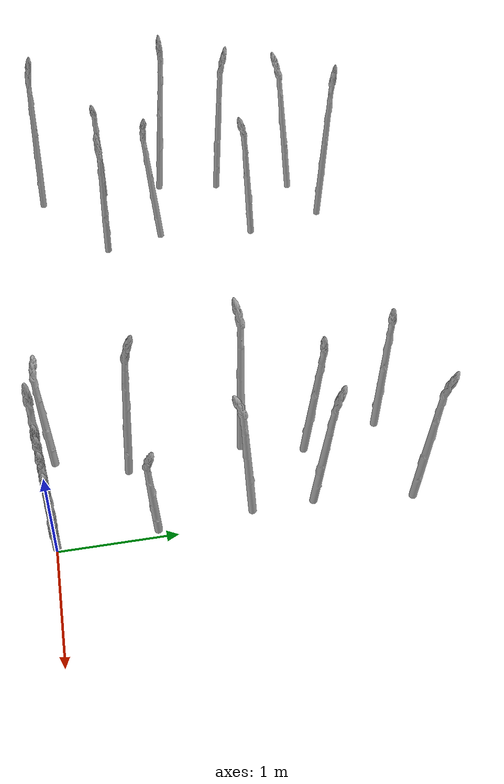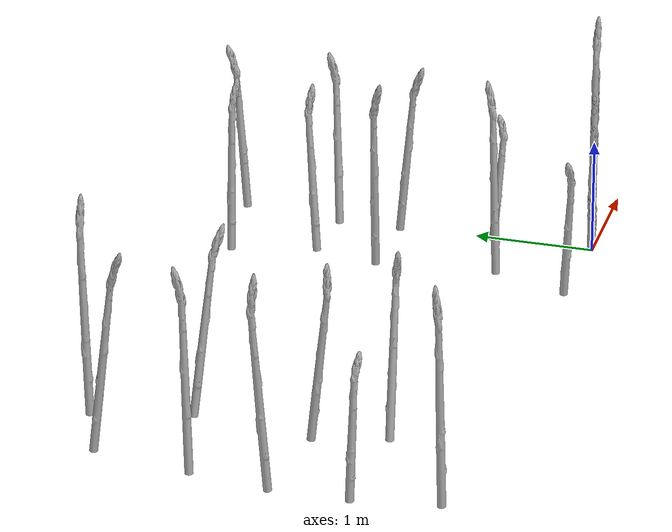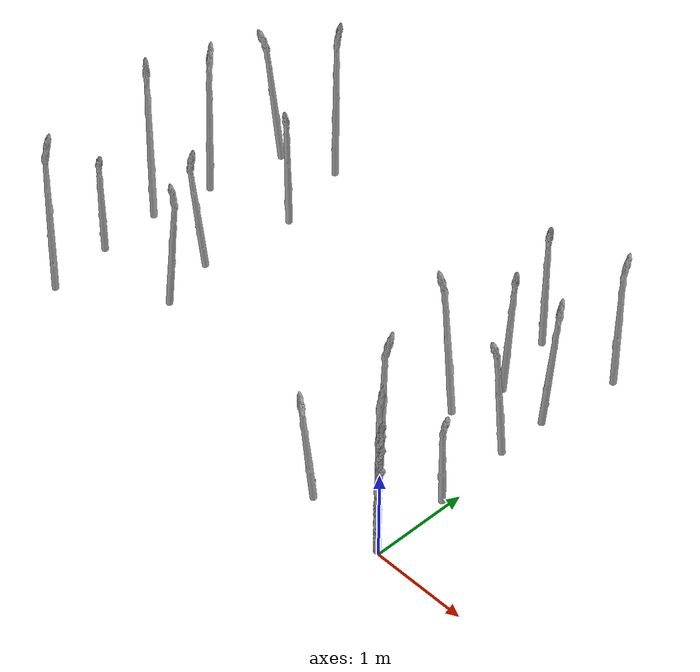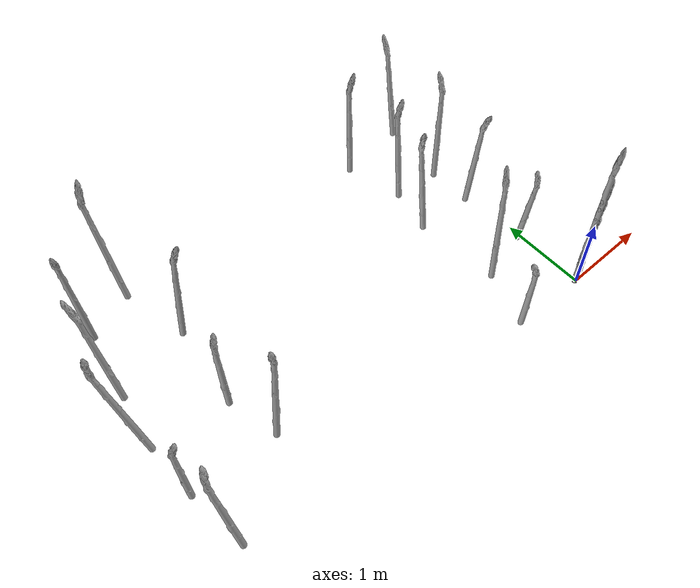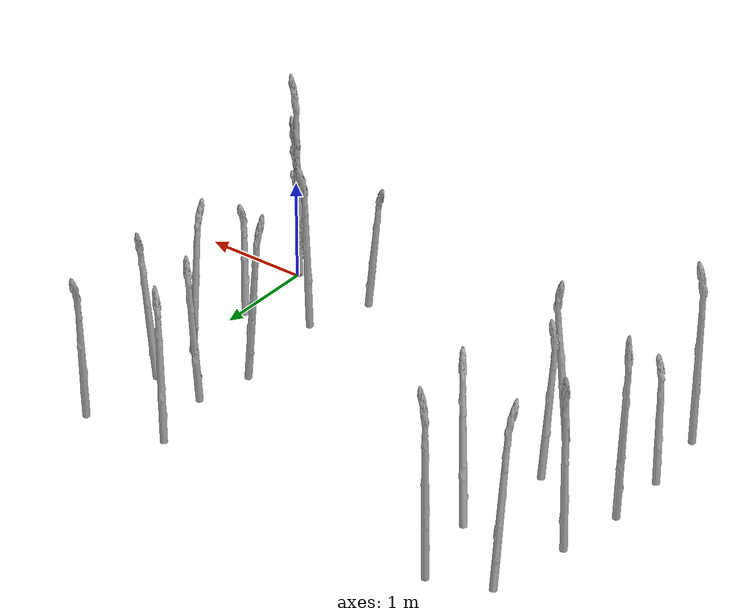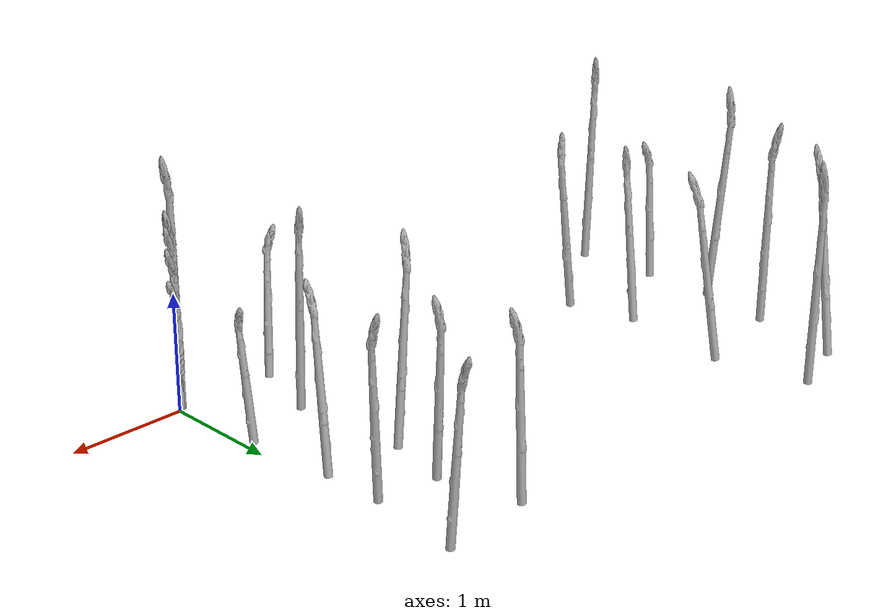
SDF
<sdf version="1.6">
 <world name="default">
  <include><uri>model://sun</uri></include>
  <model name="asparagus_15">
   <pose>-4.47572 0.129614 0 -0.0315578 -0.022779 0.619274</pose>
   <static>1</static>
   <link name="asparagus_15">
    <visual name="visual">
     <geometry>
      <mesh><uri>model://Asparagus/meshes/asparagus.obj</uri><scale>0.08 0.08 0.0916691</scale></mesh>
     </geometry>
    </visual>
    <collision name="collision">
     <geometry>
      <mesh><uri>model://Asparagus/meshes/asparagus.obj</uri><scale>0.08 0.08 0.0916691</scale></mesh>
     </geometry>
    </collision>
   </link>
  </model>
  <model name="asparagus_16">
   <pose>-0.885367 0.0533904 0 -0.0894305 0.0100927 2.48293</pose>
   <static>1</static>
   <link name="asparagus_16">
    <visual name="visual">
     <geometry>
      <mesh><uri>model://Asparagus/meshes/asparagus.obj</uri><scale>0.08 0.08 0.0620659</scale></mesh>
     </geometry>
    </visual>
    <collision name="collision">
     <geometry>
      <mesh><uri>model://Asparagus/meshes/asparagus.obj</uri><scale>0.08 0.08 0.0620659</scale></mesh>
     </geometry>
    </collision>
   </link>
  </model>
  <model name="asparagus_18">
   <pose>-4.57014 0.80678 0 0.0235157 0.0185695 5.91977</pose>
   <static>1</static>
   <link name="asparagus_18">
    <visual name="visual">
     <geometry>
      <mesh><uri>model://Asparagus/meshes/asparagus.obj</uri><scale>0.08 0.08 0.0615293</scale></mesh>
     </geometry>
    </visual>
    <collision name="collision">
     <geometry>
      <mesh><uri>model://Asparagus/meshes/asparagus.obj</uri><scale>0.08 0.08 0.0615293</scale></mesh>
     </geometry>
    </collision>
   </link>
  </model>
  <model name="asparagus_19">
   <pose>-0.66149 0.678531 0 -0.0123491 0.0234284 1.01285</pose>
   <static>1</static>
   <link name="asparagus_19">
    <visual name="visual">
     <geometry>
      <mesh><uri>model://Asparagus/meshes/asparagus.obj</uri><scale>0.08 0.08 0.0843219</scale></mesh>
     </geometry>
    </visual>
    <collision name="collision">
     <geometry>
      <mesh><uri>model://Asparagus/meshes/asparagus.obj</uri><scale>0.08 0.08 0.0843219</scale></mesh>
     </geometry>
    </collision>
   </link>
  </model>
  <model name="asparagus_21">
   <pose>-4.59486 1.43759 0 0.00848734 -0.0940713 5.5701</pose>
   <static>1</static>
   <link name="asparagus_21">
    <visual name="visual">
     <geometry>
      <mesh><uri>model://Asparagus/meshes/asparagus.obj</uri><scale>0.08 0.08 0.0923374</scale></mesh>
     </geometry>
    </visual>
    <collision name="collision">
     <geometry>
      <mesh><uri>model://Asparagus/meshes/asparagus.obj</uri><scale>0.08 0.08 0.0923374</scale></mesh>
     </geometry>
    </collision>
   </link>
  </model>
  <model name="asparagus_22">
   <pose>-0.772217 1.64667 0 0.083046 0.00159614 4.72953</pose>
   <static>1</static>
   <link name="asparagus_22">
    <visual name="visual">
     <geometry>
      <mesh><uri>model://Asparagus/meshes/asparagus.obj</uri><scale>0.08 0.08 0.0838793</scale></mesh>
     </geometry>
    </visual>
    <collision name="collision">
     <geometry>
      <mesh><uri>model://Asparagus/meshes/asparagus.obj</uri><scale>0.08 0.08 0.0838793</scale></mesh>
     </geometry>
    </collision>
   </link>
  </model>
  <model name="asparagus_24">
   <pose>-4.53901 2.12684 0 0.00979586 0.0133456 2.0767</pose>
   <static>1</static>
   <link name="asparagus_24">
    <visual name="visual">
     <geometry>
      <mesh><uri>model://Asparagus/meshes/asparagus.obj</uri><scale>0.08 0.08 0.0867962</scale></mesh>
     </geometry>
    </visual>
    <collision name="collision">
     <geometry>
      <mesh><uri>model://Asparagus/meshes/asparagus.obj</uri><scale>0.08 0.08 0.0867962</scale></mesh>
     </geometry>
    </collision>
   </link>
  </model>
  <model name="asparagus_25">
   <pose>-0.645607 2.19241 0 -0.0544809 -0.037228 5.48612</pose>
   <static>1</static>
   <link name="asparagus_25">
    <visual name="visual">
     <geometry>
      <mesh><uri>model://Asparagus/meshes/asparagus.obj</uri><scale>0.08 0.08 0.0731343</scale></mesh>
     </geometry>
    </visual>
    <collision name="collision">
     <geometry>
      <mesh><uri>model://Asparagus/meshes/asparagus.obj</uri><scale>0.08 0.08 0.0731343</scale></mesh>
     </geometry>
    </collision>
   </link>
  </model>
  <model name="asparagus_27">
   <pose>-4.40391 2.9047 0 -0.0364615 0.107548 4.42158</pose>
   <static>1</static>
   <link name="asparagus_27">
    <visual name="visual">
     <geometry>
      <mesh><uri>model://Asparagus/meshes/asparagus.obj</uri><scale>0.08 0.08 0.086396</scale></mesh>
     </geometry>
    </visual>
    <collision name="collision">
     <geometry>
      <mesh><uri>model://Asparagus/meshes/asparagus.obj</uri><scale>0.08 0.08 0.086396</scale></mesh>
     </geometry>
    </collision>
   </link>
  </model>
  <model name="asparagus_28">
   <pose>-0.818472 2.89423 0 -0.00188851 0.0170328 5.74512</pose>
   <static>1</static>
   <link name="asparagus_28">
    <visual name="visual">
     <geometry>
      <mesh><uri>model://Asparagus/meshes/asparagus.obj</uri><scale>0.08 0.08 0.0754787</scale></mesh>
     </geometry>
    </visual>
    <collision name="collision">
     <geometry>
      <mesh><uri>model://Asparagus/meshes/asparagus.obj</uri><scale>0.08 0.08 0.0754787</scale></mesh>
     </geometry>
    </collision>
   </link>
  </model>
  <model name="asparagus_48">
   <pose>-3.63984 0.760661 0 -0.0463741 -0.1003 3.53918</pose>
   <static>1</static>
   <link name="asparagus_48">
    <visual name="visual">
     <geometry>
      <mesh><uri>model://Asparagus/meshes/asparagus.obj</uri><scale>0.08 0.08 0.0777897</scale></mesh>
     </geometry>
    </visual>
    <collision name="collision">
     <geometry>
      <mesh><uri>model://Asparagus/meshes/asparagus.obj</uri><scale>0.08 0.08 0.0777897</scale></mesh>
     </geometry>
    </collision>
   </link>
  </model>
  <model name="asparagus_49">
   <pose>-0.0562409 0.862912 0 0.0581121 -0.0737812 1.464</pose>
   <static>1</static>
   <link name="asparagus_49">
    <visual name="visual">
     <geometry>
      <mesh><uri>model://Asparagus/meshes/asparagus.obj</uri><scale>0.08 0.08 0.0552779</scale></mesh>
     </geometry>
    </visual>
    <collision name="collision">
     <geometry>
      <mesh><uri>model://Asparagus/meshes/asparagus.obj</uri><scale>0.08 0.08 0.0552779</scale></mesh>
     </geometry>
    </collision>
   </link>
  </model>
  <model name="asparagus_51">
   <pose>-3.74853 1.37491 0 0.0713355 -0.0872613 0.736825</pose>
   <static>1</static>
   <link name="asparagus_51">
    <visual name="visual">
     <geometry>
      <mesh><uri>model://Asparagus/meshes/asparagus.obj</uri><scale>0.08 0.08 0.0753609</scale></mesh>
     </geometry>
    </visual>
    <collision name="collision">
     <geometry>
      <mesh><uri>model://Asparagus/meshes/asparagus.obj</uri><scale>0.08 0.08 0.0753609</scale></mesh>
     </geometry>
    </collision>
   </link>
  </model>
  <model name="asparagus_52">
   <pose>-0.106204 1.62014 0 0.00696899 0.0818228 4.79784</pose>
   <static>1</static>
   <link name="asparagus_52">
    <visual name="visual">
     <geometry>
      <mesh><uri>model://Asparagus/meshes/asparagus.obj</uri><scale>0.08 0.08 0.07469</scale></mesh>
     </geometry>
    </visual>
    <collision name="collision">
     <geometry>
      <mesh><uri>model://Asparagus/meshes/asparagus.obj</uri><scale>0.08 0.08 0.07469</scale></mesh>
     </geometry>
    </collision>
   </link>
  </model>
  <model name="asparagus_54">
   <pose>-3.65558 2.32609 0 -0.0202266 0.128139 5.31351</pose>
   <static>1</static>
   <link name="asparagus_54">
    <visual name="visual">
     <geometry>
      <mesh><uri>model://Asparagus/meshes/asparagus.obj</uri><scale>0.08 0.08 0.0802712</scale></mesh>
     </geometry>
    </visual>
    <collision name="collision">
     <geometry>
      <mesh><uri>model://Asparagus/meshes/asparagus.obj</uri><scale>0.08 0.08 0.0802712</scale></mesh>
     </geometry>
    </collision>
   </link>
  </model>
  <model name="asparagus_55">
   <pose>-0.134017 2.18482 0 0.0781683 -0.00826219 2.13016</pose>
   <static>1</static>
   <link name="asparagus_55">
    <visual name="visual">
     <geometry>
      <mesh><uri>model://Asparagus/meshes/asparagus.obj</uri><scale>0.08 0.08 0.0751874</scale></mesh>
     </geometry>
    </visual>
    <collision name="collision">
     <geometry>
      <mesh><uri>model://Asparagus/meshes/asparagus.obj</uri><scale>0.08 0.08 0.0751874</scale></mesh>
     </geometry>
    </collision>
   </link>
  </model>
  <model name="asparagus_57">
   <pose>-3.8348 3.12836 0 -0.02102 -0.014929 6.19022</pose>
   <static>1</static>
   <link name="asparagus_57">
    <visual name="visual">
     <geometry>
      <mesh><uri>model://Asparagus/meshes/asparagus.obj</uri><scale>0.08 0.08 0.0926047</scale></mesh>
     </geometry>
    </visual>
    <collision name="collision">
     <geometry>
      <mesh><uri>model://Asparagus/meshes/asparagus.obj</uri><scale>0.08 0.08 0.0926047</scale></mesh>
     </geometry>
    </collision>
   </link>
  </model>
  <model name="asparagus_58">
   <pose>-0.0252951 3.03041 0 -0.0297441 0.0525517 1.52503</pose>
   <static>1</static>
   <link name="asparagus_58">
    <visual name="visual">
     <geometry>
      <mesh><uri>model://Asparagus/meshes/asparagus.obj</uri><scale>0.08 0.08 0.0736542</scale></mesh>
     </geometry>
    </visual>
    <collision name="collision">
     <geometry>
      <mesh><uri>model://Asparagus/meshes/asparagus.obj</uri><scale>0.08 0.08 0.0736542</scale></mesh>
     </geometry>
    </collision>
   </link>
  </model>
  <model name="asparagus_65">
   <static>1</static>
   <link name="asparagus_65">
    <visual name="visual">
     <geometry>
      <mesh><uri>model://Asparagus/meshes/asparagus.obj</uri><scale>0.08 0.08 0.0662845</scale></mesh>
     </geometry>
    </visual>
    <collision name="collision">
     <geometry>
      <mesh><uri>model://Asparagus/meshes/asparagus.obj</uri><scale>0.08 0.08 0.0662845</scale></mesh>
     </geometry>
    </collision>
   </link>
  </model>
  <model name="asparagus_66">
   <static>1</static>
   <link name="asparagus_66">
    <visual name="visual">
     <geometry>
      <mesh><uri>model://Asparagus/meshes/asparagus.obj</uri><scale>0.08 0.08 0.102077</scale></mesh>
     </geometry>
    </visual>
    <collision name="collision">
     <geometry>
      <mesh><uri>model://Asparagus/meshes/asparagus.obj</uri><scale>0.08 0.08 0.102077</scale></mesh>
     </geometry>
    </collision>
   </link>
  </model>
  <model name="asparagus_67">
   <static>1</static>
   <link name="asparagus_67">
    <visual name="visual">
     <geometry>
      <mesh><uri>model://Asparagus/meshes/asparagus.obj</uri><scale>0.08 0.08 0.0811444</scale></mesh>
     </geometry>
    </visual>
    <collision name="collision">
     <geometry>
      <mesh><uri>model://Asparagus/meshes/asparagus.obj</uri><scale>0.08 0.08 0.0811444</scale></mesh>
     </geometry>
    </collision>
   </link>
  </model>
  <model name="asparagus_68">
   <static>1</static>
   <link name="asparagus_68">
    <visual name="visual">
     <geometry>
      <mesh><uri>model://Asparagus/meshes/asparagus.obj</uri><scale>0.08 0.08 0.0750408</scale></mesh>
     </geometry>
    </visual>
    <collision name="collision">
     <geometry>
      <mesh><uri>model://Asparagus/meshes/asparagus.obj</uri><scale>0.08 0.08 0.0750408</scale></mesh>
     </geometry>
    </collision>
   </link>
  </model>
  <model name="asparagus_69">
   <static>1</static>
   <link name="asparagus_69">
    <visual name="visual">
     <geometry>
      <mesh><uri>model://Asparagus/meshes/asparagus.obj</uri><scale>0.08 0.08 0.0806644</scale></mesh>
     </geometry>
    </visual>
    <collision name="collision">
     <geometry>
      <mesh><uri>model://Asparagus/meshes/asparagus.obj</uri><scale>0.08 0.08 0.0806644</scale></mesh>
     </geometry>
    </collision>
   </link>
  </model>
  <model name="asparagus_70">
   <static>1</static>
   <link name="asparagus_70">
    <visual name="visual">
     <geometry>
      <mesh><uri>model://Asparagus/meshes/asparagus.obj</uri><scale>0.08 0.08 0.0536512</scale></mesh>
     </geometry>
    </visual>
    <collision name="collision">
     <geometry>
      <mesh><uri>model://Asparagus/meshes/asparagus.obj</uri><scale>0.08 0.08 0.0536512</scale></mesh>
     </geometry>
    </collision>
   </link>
  </model>
 </world>
</sdf>
